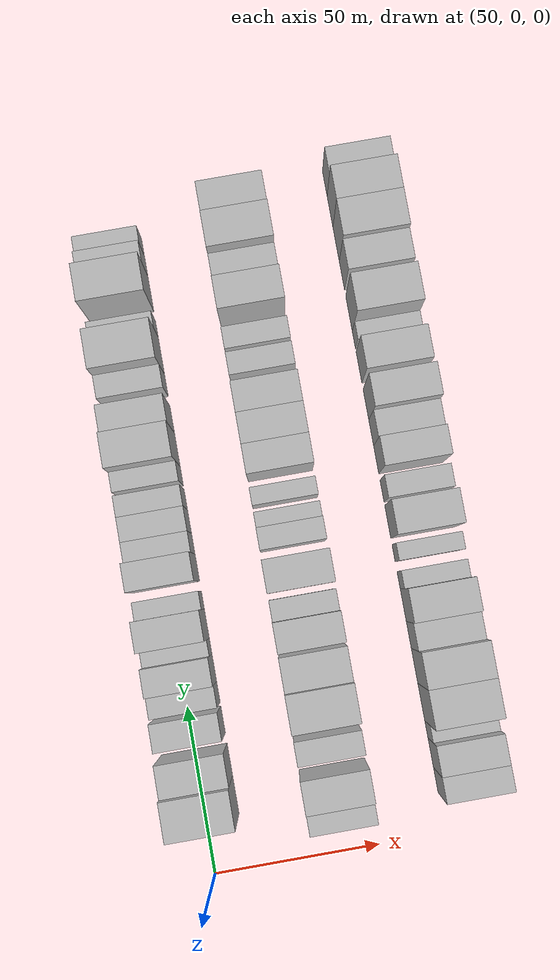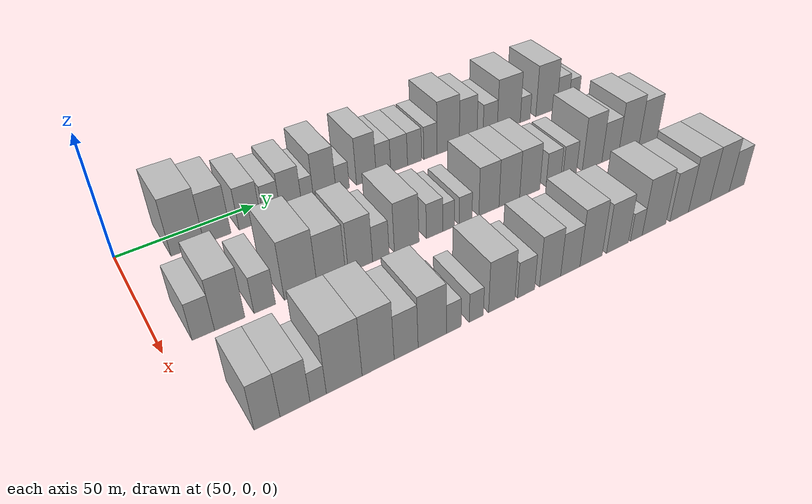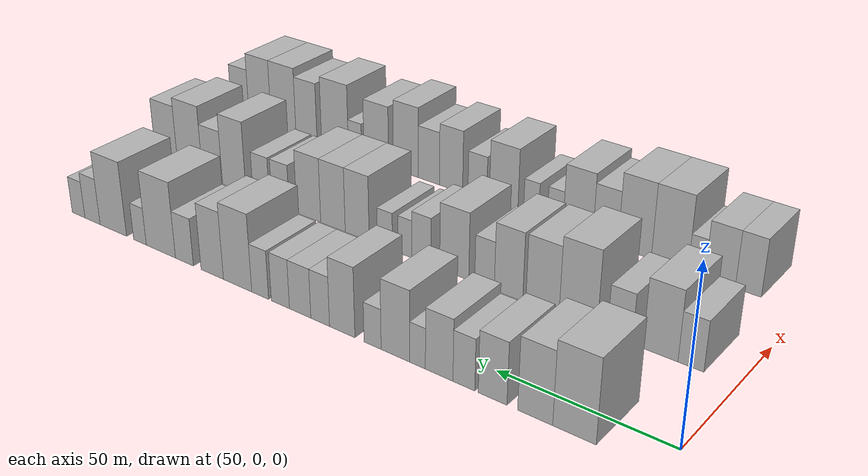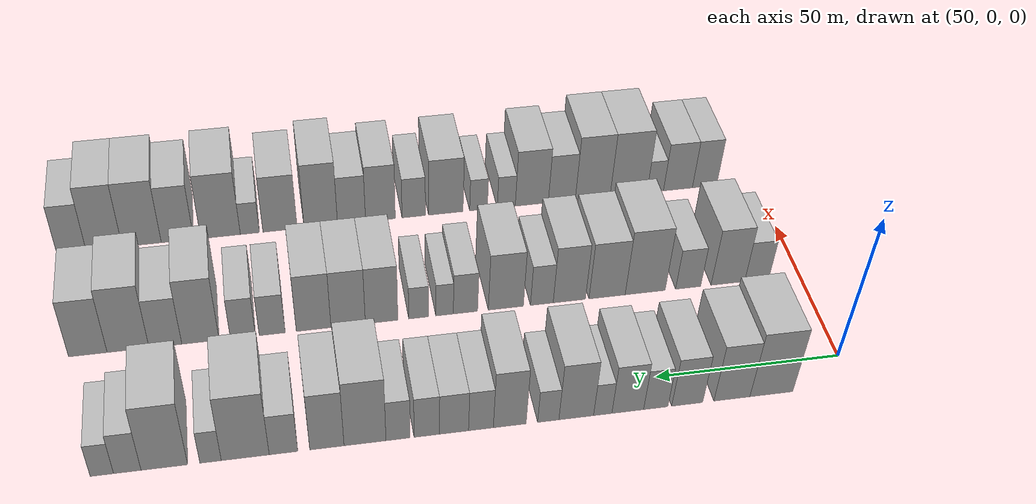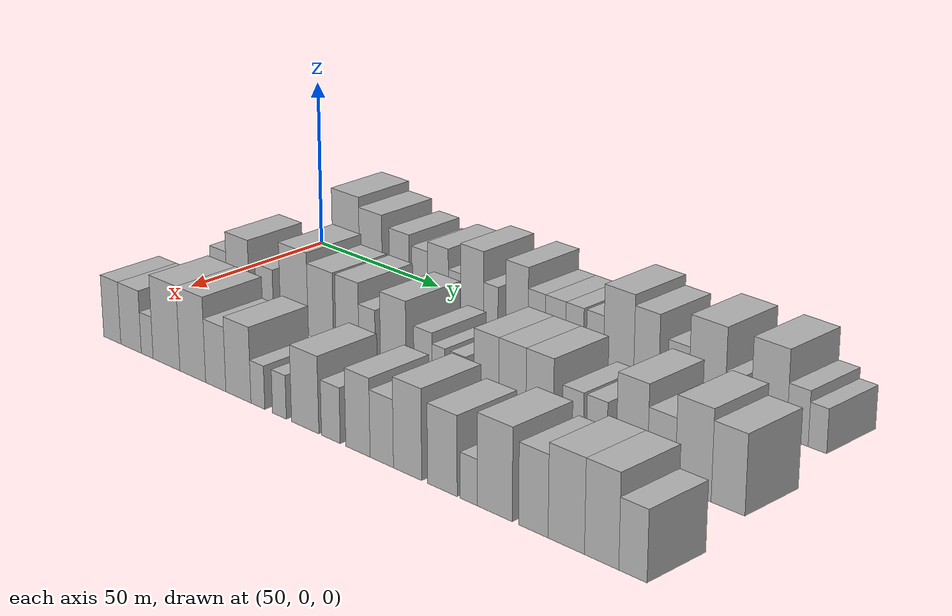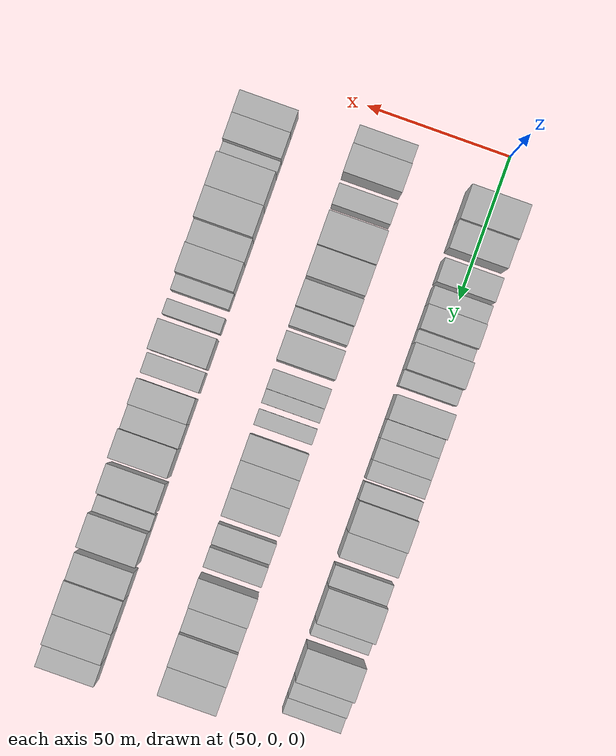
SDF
<sdf version="1.6">
 <world name="default">
  <model name="building_44">
   <static>1</static>
   <pose>50.0000 21.8897 0 0.000000 0.000000 0.000000</pose>
   <link name="link">
    <pose>0 0 12.00 0 0 0</pose>
    <collision name="collision"><geometry><box><size>20.0000 11.5788 24.0000</size></box></geometry></collision>
    <visual name="visual">
     <cast_shadows>0</cast_shadows>
     <geometry><box><size>20.0000 11.5788 24.0000</size></box></geometry>
     <material>
      <script>
       <uri>model://HANNAS_wall/materials/scripts</uri>
       <uri>model://HANNAS_wall/materials/textures</uri>
       <name>vrc/HANNAS_wall</name>
      </script>
     </material>
    </visual>
   </link>
  </model>
  <model name="building_45">
   <static>1</static>
   <pose>50.0000 32.5011 0 0.000000 0.000000 0.000000</pose>
   <link name="link">
    <pose>0 0 10.50 0 0 0</pose>
    <collision name="collision"><geometry><box><size>20.0000 9.6440 21.0000</size></box></geometry></collision>
    <visual name="visual">
     <cast_shadows>0</cast_shadows>
     <geometry><box><size>20.0000 9.6440 21.0000</size></box></geometry>
     <material>
      <script>
       <uri>model://HANNAS_wall/materials/scripts</uri>
       <uri>model://HANNAS_wall/materials/textures</uri>
       <name>vrc/HANNAS_wall</name>
      </script>
     </material>
    </visual>
   </link>
  </model>
  <model name="building_46">
   <static>1</static>
   <pose>50.0000 44.4527 0 0.000000 0.000000 0.000000</pose>
   <link name="link">
    <pose>0 0 9.00 0 0 0</pose>
    <collision name="collision"><geometry><box><size>20.0000 8.2592 18.0000</size></box></geometry></collision>
    <visual name="visual">
     <cast_shadows>0</cast_shadows>
     <geometry><box><size>20.0000 8.2592 18.0000</size></box></geometry>
     <material>
      <script>
       <uri>model://HANNAS_wall/materials/scripts</uri>
       <uri>model://HANNAS_wall/materials/textures</uri>
       <name>vrc/HANNAS_wall</name>
      </script>
     </material>
    </visual>
   </link>
  </model>
  <model name="building_47">
   <static>1</static>
   <pose>50.0000 52.7988 0 0.000000 0.000000 0.000000</pose>
   <link name="link">
    <pose>0 0 7.50 0 0 0</pose>
    <collision name="collision"><geometry><box><size>20.0000 6.4331 15.0000</size></box></geometry></collision>
    <visual name="visual">
     <cast_shadows>0</cast_shadows>
     <geometry><box><size>20.0000 6.4331 15.0000</size></box></geometry>
     <material>
      <script>
       <uri>model://HANNAS_wall/materials/scripts</uri>
       <uri>model://HANNAS_wall/materials/textures</uri>
       <name>vrc/HANNAS_wall</name>
      </script>
     </material>
    </visual>
   </link>
  </model>
  <model name="building_48">
   <static>1</static>
   <pose>50.0000 60.1944 0 0.000000 0.000000 0.000000</pose>
   <link name="link">
    <pose>0 0 9.00 0 0 0</pose>
    <collision name="collision"><geometry><box><size>20.0000 8.3580 18.0000</size></box></geometry></collision>
    <visual name="visual">
     <cast_shadows>0</cast_shadows>
     <geometry><box><size>20.0000 8.3580 18.0000</size></box></geometry>
     <material>
      <script>
       <uri>model://HANNAS_wall/materials/scripts</uri>
       <uri>model://HANNAS_wall/materials/textures</uri>
       <name>vrc/HANNAS_wall</name>
      </script>
     </material>
    </visual>
   </link>
  </model>
  <model name="building_49">
   <static>1</static>
   <pose>50.0000 66.7749 0 0.000000 0.000000 0.000000</pose>
   <link name="link">
    <pose>0 0 6.00 0 0 0</pose>
    <collision name="collision"><geometry><box><size>20.0000 4.8031 12.0000</size></box></geometry></collision>
    <visual name="visual">
     <cast_shadows>0</cast_shadows>
     <geometry><box><size>20.0000 4.8031 12.0000</size></box></geometry>
     <material>
      <script>
       <uri>model://HANNAS_wall/materials/scripts</uri>
       <uri>model://HANNAS_wall/materials/textures</uri>
       <name>vrc/HANNAS_wall</name>
      </script>
     </material>
    </visual>
   </link>
  </model>
  <model name="building_50">
   <static>1</static>
   <pose>50.0000 73.7119 0 0.000000 0.000000 0.000000</pose>
   <link name="link">
    <pose>0 0 10.50 0 0 0</pose>
    <collision name="collision"><geometry><box><size>20.0000 9.0707 21.0000</size></box></geometry></collision>
    <visual name="visual">
     <cast_shadows>0</cast_shadows>
     <geometry><box><size>20.0000 9.0707 21.0000</size></box></geometry>
     <material>
      <script>
       <uri>model://HANNAS_wall/materials/scripts</uri>
       <uri>model://HANNAS_wall/materials/textures</uri>
       <name>vrc/HANNAS_wall</name>
      </script>
     </material>
    </visual>
   </link>
  </model>
  <model name="building_51">
   <static>1</static>
   <pose>50.0000 81.0116 0 0.000000 0.000000 0.000000</pose>
   <link name="link">
    <pose>0 0 6.00 0 0 0</pose>
    <collision name="collision"><geometry><box><size>20.0000 5.5287 12.0000</size></box></geometry></collision>
    <visual name="visual">
     <cast_shadows>0</cast_shadows>
     <geometry><box><size>20.0000 5.5287 12.0000</size></box></geometry>
     <material>
      <script>
       <uri>model://HANNAS_wall/materials/scripts</uri>
       <uri>model://HANNAS_wall/materials/textures</uri>
       <name>vrc/HANNAS_wall</name>
      </script>
     </material>
    </visual>
   </link>
  </model>
  <model name="building_52">
   <static>1</static>
   <pose>50.0000 91.0099 0 0.000000 0.000000 0.000000</pose>
   <link name="link">
    <pose>0 0 10.50 0 0 0</pose>
    <collision name="collision"><geometry><box><size>20.0000 8.4680 21.0000</size></box></geometry></collision>
    <visual name="visual">
     <cast_shadows>0</cast_shadows>
     <geometry><box><size>20.0000 8.4680 21.0000</size></box></geometry>
     <material>
      <script>
       <uri>model://HANNAS_wall/materials/scripts</uri>
       <uri>model://HANNAS_wall/materials/textures</uri>
       <name>vrc/HANNAS_wall</name>
      </script>
     </material>
    </visual>
   </link>
  </model>
  <model name="building_53">
   <static>1</static>
   <pose>50.0000 98.4394 0 0.000000 0.000000 0.000000</pose>
   <link name="link">
    <pose>0 0 7.50 0 0 0</pose>
    <collision name="collision"><geometry><box><size>20.0000 6.3912 15.0000</size></box></geometry></collision>
    <visual name="visual">
     <cast_shadows>0</cast_shadows>
     <geometry><box><size>20.0000 6.3912 15.0000</size></box></geometry>
     <material>
      <script>
       <uri>model://HANNAS_wall/materials/scripts</uri>
       <uri>model://HANNAS_wall/materials/textures</uri>
       <name>vrc/HANNAS_wall</name>
      </script>
     </material>
    </visual>
   </link>
  </model>
  <model name="building_54">
   <static>1</static>
   <pose>50.0000 105.3752 0 0.000000 0.000000 0.000000</pose>
   <link name="link">
    <pose>0 0 7.50 0 0 0</pose>
    <collision name="collision"><geometry><box><size>20.0000 7.4803 15.0000</size></box></geometry></collision>
    <visual name="visual">
     <cast_shadows>0</cast_shadows>
     <geometry><box><size>20.0000 7.4803 15.0000</size></box></geometry>
     <material>
      <script>
       <uri>model://HANNAS_wall/materials/scripts</uri>
       <uri>model://HANNAS_wall/materials/textures</uri>
       <name>vrc/HANNAS_wall</name>
      </script>
     </material>
    </visual>
   </link>
  </model>
  <model name="building_55">
   <static>1</static>
   <pose>50.0000 112.3379 0 0.000000 0.000000 0.000000</pose>
   <link name="link">
    <pose>0 0 7.50 0 0 0</pose>
    <collision name="collision"><geometry><box><size>20.0000 6.4452 15.0000</size></box></geometry></collision>
    <visual name="visual">
     <cast_shadows>0</cast_shadows>
     <geometry><box><size>20.0000 6.4452 15.0000</size></box></geometry>
     <material>
      <script>
       <uri>model://HANNAS_wall/materials/scripts</uri>
       <uri>model://HANNAS_wall/materials/textures</uri>
       <name>vrc/HANNAS_wall</name>
      </script>
     </material>
    </visual>
   </link>
  </model>
  <model name="building_56">
   <static>1</static>
   <pose>50.0000 119.6325 0 0.000000 0.000000 0.000000</pose>
   <link name="link">
    <pose>0 0 7.50 0 0 0</pose>
    <collision name="collision"><geometry><box><size>20.0000 6.1440 15.0000</size></box></geometry></collision>
    <visual name="visual">
     <cast_shadows>0</cast_shadows>
     <geometry><box><size>20.0000 6.1440 15.0000</size></box></geometry>
     <material>
      <script>
       <uri>model://HANNAS_wall/materials/scripts</uri>
       <uri>model://HANNAS_wall/materials/textures</uri>
       <name>vrc/HANNAS_wall</name>
      </script>
     </material>
    </visual>
   </link>
  </model>
  <model name="building_57">
   <static>1</static>
   <pose>50.0000 128.0010 0 0.000000 0.000000 0.000000</pose>
   <link name="link">
    <pose>0 0 12.00 0 0 0</pose>
    <collision name="collision"><geometry><box><size>20.0000 10.5930 24.0000</size></box></geometry></collision>
    <visual name="visual">
     <cast_shadows>0</cast_shadows>
     <geometry><box><size>20.0000 10.5930 24.0000</size></box></geometry>
     <material>
      <script>
       <uri>model://HANNAS_wall/materials/scripts</uri>
       <uri>model://HANNAS_wall/materials/textures</uri>
       <name>vrc/HANNAS_wall</name>
      </script>
     </material>
    </visual>
   </link>
  </model>
  <model name="building_58">
   <static>1</static>
   <pose>50.0000 137.6000 0 0.000000 0.000000 0.000000</pose>
   <link name="link">
    <pose>0 0 10.50 0 0 0</pose>
    <collision name="collision"><geometry><box><size>20.0000 8.6049 21.0000</size></box></geometry></collision>
    <visual name="visual">
     <cast_shadows>0</cast_shadows>
     <geometry><box><size>20.0000 8.6049 21.0000</size></box></geometry>
     <material>
      <script>
       <uri>model://HANNAS_wall/materials/scripts</uri>
       <uri>model://HANNAS_wall/materials/textures</uri>
       <name>vrc/HANNAS_wall</name>
      </script>
     </material>
    </visual>
   </link>
  </model>
  <model name="building_59">
   <static>1</static>
   <pose>50.0000 148.4644 0 0.000000 0.000000 0.000000</pose>
   <link name="link">
    <pose>0 0 7.50 0 0 0</pose>
    <collision name="collision"><geometry><box><size>20.0000 7.1239 15.0000</size></box></geometry></collision>
    <visual name="visual">
     <cast_shadows>0</cast_shadows>
     <geometry><box><size>20.0000 7.1239 15.0000</size></box></geometry>
     <material>
      <script>
       <uri>model://HANNAS_wall/materials/scripts</uri>
       <uri>model://HANNAS_wall/materials/textures</uri>
       <name>vrc/HANNAS_wall</name>
      </script>
     </material>
    </visual>
   </link>
  </model>
  <model name="building_60">
   <static>1</static>
   <pose>50.0000 157.9762 0 0.000000 0.000000 0.000000</pose>
   <link name="link">
    <pose>0 0 12.00 0 0 0</pose>
    <collision name="collision"><geometry><box><size>20.0000 11.8997 24.0000</size></box></geometry></collision>
    <visual name="visual">
     <cast_shadows>0</cast_shadows>
     <geometry><box><size>20.0000 11.8997 24.0000</size></box></geometry>
     <material>
      <script>
       <uri>model://HANNAS_wall/materials/scripts</uri>
       <uri>model://HANNAS_wall/materials/textures</uri>
       <name>vrc/HANNAS_wall</name>
      </script>
     </material>
    </visual>
   </link>
  </model>
  <model name="building_61">
   <static>1</static>
   <pose>50.0000 166.5646 0 0.000000 0.000000 0.000000</pose>
   <link name="link">
    <pose>0 0 6.00 0 0 0</pose>
    <collision name="collision"><geometry><box><size>20.0000 5.2772 12.0000</size></box></geometry></collision>
    <visual name="visual">
     <cast_shadows>0</cast_shadows>
     <geometry><box><size>20.0000 5.2772 12.0000</size></box></geometry>
     <material>
      <script>
       <uri>model://HANNAS_wall/materials/scripts</uri>
       <uri>model://HANNAS_wall/materials/textures</uri>
       <name>vrc/HANNAS_wall</name>
      </script>
     </material>
    </visual>
   </link>
  </model>
  <model name="building_62">
   <static>1</static>
   <pose>50.0000 177.9136 0 0.000000 0.000000 0.000000</pose>
   <link name="link">
    <pose>0 0 12.00 0 0 0</pose>
    <collision name="collision"><geometry><box><size>20.0000 11.4206 24.0000</size></box></geometry></collision>
    <visual name="visual">
     <cast_shadows>0</cast_shadows>
     <geometry><box><size>20.0000 11.4206 24.0000</size></box></geometry>
     <material>
      <script>
       <uri>model://HANNAS_wall/materials/scripts</uri>
       <uri>model://HANNAS_wall/materials/textures</uri>
       <name>vrc/HANNAS_wall</name>
      </script>
     </material>
    </visual>
   </link>
  </model>
  <model name="building_63">
   <static>1</static>
   <pose>50.0000 186.9711 0 0.000000 0.000000 0.000000</pose>
   <link name="link">
    <pose>0 0 7.50 0 0 0</pose>
    <collision name="collision"><geometry><box><size>20.0000 6.6943 15.0000</size></box></geometry></collision>
    <visual name="visual">
     <cast_shadows>0</cast_shadows>
     <geometry><box><size>20.0000 6.6943 15.0000</size></box></geometry>
     <material>
      <script>
       <uri>model://HANNAS_wall/materials/scripts</uri>
       <uri>model://HANNAS_wall/materials/textures</uri>
       <name>vrc/HANNAS_wall</name>
      </script>
     </material>
    </visual>
   </link>
  </model>
  <model name="building_64">
   <static>1</static>
   <pose>50.0000 193.1554 0 0.000000 0.000000 0.000000</pose>
   <link name="link">
    <pose>0 0 6.00 0 0 0</pose>
    <collision name="collision"><geometry><box><size>20.0000 5.6743 12.0000</size></box></geometry></collision>
    <visual name="visual">
     <cast_shadows>0</cast_shadows>
     <geometry><box><size>20.0000 5.6743 12.0000</size></box></geometry>
     <material>
      <script>
       <uri>model://HANNAS_wall/materials/scripts</uri>
       <uri>model://HANNAS_wall/materials/textures</uri>
       <name>vrc/HANNAS_wall</name>
      </script>
     </material>
    </visual>
   </link>
  </model>
  <model name="building_126">
   <static>1</static>
   <pose>90.0000 12.5391 0 0.000000 0.000000 0.000000</pose>
   <link name="link">
    <pose>0 0 7.50 0 0 0</pose>
    <collision name="collision"><geometry><box><size>20.0000 7.0547 15.0000</size></box></geometry></collision>
    <visual name="visual">
     <cast_shadows>0</cast_shadows>
     <geometry><box><size>20.0000 7.0547 15.0000</size></box></geometry>
     <material>
      <script>
       <uri>model://HANNAS_wall/materials/scripts</uri>
       <uri>model://HANNAS_wall/materials/textures</uri>
       <name>vrc/HANNAS_wall</name>
      </script>
     </material>
    </visual>
   </link>
  </model>
  <model name="building_127">
   <static>1</static>
   <pose>90.0000 20.9456 0 0.000000 0.000000 0.000000</pose>
   <link name="link">
    <pose>0 0 10.50 0 0 0</pose>
    <collision name="collision"><geometry><box><size>20.0000 9.7583 21.0000</size></box></geometry></collision>
    <visual name="visual">
     <cast_shadows>0</cast_shadows>
     <geometry><box><size>20.0000 9.7583 21.0000</size></box></geometry>
     <material>
      <script>
       <uri>model://HANNAS_wall/materials/scripts</uri>
       <uri>model://HANNAS_wall/materials/textures</uri>
       <name>vrc/HANNAS_wall</name>
      </script>
     </material>
    </visual>
   </link>
  </model>
  <model name="building_128">
   <static>1</static>
   <pose>90.0000 32.4412 0 0.000000 0.000000 0.000000</pose>
   <link name="link">
    <pose>0 0 7.50 0 0 0</pose>
    <collision name="collision"><geometry><box><size>20.0000 7.2329 15.0000</size></box></geometry></collision>
    <visual name="visual">
     <cast_shadows>0</cast_shadows>
     <geometry><box><size>20.0000 7.2329 15.0000</size></box></geometry>
     <material>
      <script>
       <uri>model://HANNAS_wall/materials/scripts</uri>
       <uri>model://HANNAS_wall/materials/textures</uri>
       <name>vrc/HANNAS_wall</name>
      </script>
     </material>
    </visual>
   </link>
  </model>
  <model name="building_129">
   <static>1</static>
   <pose>90.0000 44.7947 0 0.000000 0.000000 0.000000</pose>
   <link name="link">
    <pose>0 0 12.00 0 0 0</pose>
    <collision name="collision"><geometry><box><size>20.0000 11.4742 24.0000</size></box></geometry></collision>
    <visual name="visual">
     <cast_shadows>0</cast_shadows>
     <geometry><box><size>20.0000 11.4742 24.0000</size></box></geometry>
     <material>
      <script>
       <uri>model://HANNAS_wall/materials/scripts</uri>
       <uri>model://HANNAS_wall/materials/textures</uri>
       <name>vrc/HANNAS_wall</name>
      </script>
     </material>
    </visual>
   </link>
  </model>
  <model name="building_130">
   <static>1</static>
   <pose>90.0000 55.6900 0 0.000000 0.000000 0.000000</pose>
   <link name="link">
    <pose>0 0 10.50 0 0 0</pose>
    <collision name="collision"><geometry><box><size>20.0000 10.3165 21.0000</size></box></geometry></collision>
    <visual name="visual">
     <cast_shadows>0</cast_shadows>
     <geometry><box><size>20.0000 10.3165 21.0000</size></box></geometry>
     <material>
      <script>
       <uri>model://HANNAS_wall/materials/scripts</uri>
       <uri>model://HANNAS_wall/materials/textures</uri>
       <name>vrc/HANNAS_wall</name>
      </script>
     </material>
    </visual>
   </link>
  </model>
  <model name="building_131">
   <static>1</static>
   <pose>90.0000 66.4142 0 0.000000 0.000000 0.000000</pose>
   <link name="link">
    <pose>0 0 10.50 0 0 0</pose>
    <collision name="collision"><geometry><box><size>20.0000 9.1318 21.0000</size></box></geometry></collision>
    <visual name="visual">
     <cast_shadows>0</cast_shadows>
     <geometry><box><size>20.0000 9.1318 21.0000</size></box></geometry>
     <material>
      <script>
       <uri>model://HANNAS_wall/materials/scripts</uri>
       <uri>model://HANNAS_wall/materials/textures</uri>
       <name>vrc/HANNAS_wall</name>
      </script>
     </material>
    </visual>
   </link>
  </model>
  <model name="building_132">
   <static>1</static>
   <pose>90.0000 74.1869 0 0.000000 0.000000 0.000000</pose>
   <link name="link">
    <pose>0 0 7.50 0 0 0</pose>
    <collision name="collision"><geometry><box><size>20.0000 6.4135 15.0000</size></box></geometry></collision>
    <visual name="visual">
     <cast_shadows>0</cast_shadows>
     <geometry><box><size>20.0000 6.4135 15.0000</size></box></geometry>
     <material>
      <script>
       <uri>model://HANNAS_wall/materials/scripts</uri>
       <uri>model://HANNAS_wall/materials/textures</uri>
       <name>vrc/HANNAS_wall</name>
      </script>
     </material>
    </visual>
   </link>
  </model>
  <model name="building_133">
   <static>1</static>
   <pose>90.0000 84.3078 0 0.000000 0.000000 0.000000</pose>
   <link name="link">
    <pose>0 0 10.50 0 0 0</pose>
    <collision name="collision"><geometry><box><size>20.0000 9.8284 21.0000</size></box></geometry></collision>
    <visual name="visual">
     <cast_shadows>0</cast_shadows>
     <geometry><box><size>20.0000 9.8284 21.0000</size></box></geometry>
     <material>
      <script>
       <uri>model://HANNAS_wall/materials/scripts</uri>
       <uri>model://HANNAS_wall/materials/textures</uri>
       <name>vrc/HANNAS_wall</name>
      </script>
     </material>
    </visual>
   </link>
  </model>
  <model name="building_134">
   <static>1</static>
   <pose>90.0000 95.6034 0 0.000000 0.000000 0.000000</pose>
   <link name="link">
    <pose>0 0 7.50 0 0 0</pose>
    <collision name="collision"><geometry><box><size>20.0000 6.7628 15.0000</size></box></geometry></collision>
    <visual name="visual">
     <cast_shadows>0</cast_shadows>
     <geometry><box><size>20.0000 6.7628 15.0000</size></box></geometry>
     <material>
      <script>
       <uri>model://HANNAS_wall/materials/scripts</uri>
       <uri>model://HANNAS_wall/materials/textures</uri>
       <name>vrc/HANNAS_wall</name>
      </script>
     </material>
    </visual>
   </link>
  </model>
  <model name="building_135">
   <static>1</static>
   <pose>90.0000 101.4055 0 0.000000 0.000000 0.000000</pose>
   <link name="link">
    <pose>0 0 6.00 0 0 0</pose>
    <collision name="collision"><geometry><box><size>20.0000 4.8414 12.0000</size></box></geometry></collision>
    <visual name="visual">
     <cast_shadows>0</cast_shadows>
     <geometry><box><size>20.0000 4.8414 12.0000</size></box></geometry>
     <material>
      <script>
       <uri>model://HANNAS_wall/materials/scripts</uri>
       <uri>model://HANNAS_wall/materials/textures</uri>
       <name>vrc/HANNAS_wall</name>
      </script>
     </material>
    </visual>
   </link>
  </model>
  <model name="building_136">
   <static>1</static>
   <pose>90.0000 108.5738 0 0.000000 0.000000 0.000000</pose>
   <link name="link">
    <pose>0 0 6.00 0 0 0</pose>
    <collision name="collision"><geometry><box><size>20.0000 5.4952 12.0000</size></box></geometry></collision>
    <visual name="visual">
     <cast_shadows>0</cast_shadows>
     <geometry><box><size>20.0000 5.4952 12.0000</size></box></geometry>
     <material>
      <script>
       <uri>model://HANNAS_wall/materials/scripts</uri>
       <uri>model://HANNAS_wall/materials/textures</uri>
       <name>vrc/HANNAS_wall</name>
      </script>
     </material>
    </visual>
   </link>
  </model>
  <model name="building_137">
   <static>1</static>
   <pose>90.0000 118.7861 0 0.000000 0.000000 0.000000</pose>
   <link name="link">
    <pose>0 0 10.50 0 0 0</pose>
    <collision name="collision"><geometry><box><size>20.0000 8.9294 21.0000</size></box></geometry></collision>
    <visual name="visual">
     <cast_shadows>0</cast_shadows>
     <geometry><box><size>20.0000 8.9294 21.0000</size></box></geometry>
     <material>
      <script>
       <uri>model://HANNAS_wall/materials/scripts</uri>
       <uri>model://HANNAS_wall/materials/textures</uri>
       <name>vrc/HANNAS_wall</name>
      </script>
     </material>
    </visual>
   </link>
  </model>
  <model name="building_138">
   <static>1</static>
   <pose>90.0000 127.9511 0 0.000000 0.000000 0.000000</pose>
   <link name="link">
    <pose>0 0 10.50 0 0 0</pose>
    <collision name="collision"><geometry><box><size>20.0000 9.4006 21.0000</size></box></geometry></collision>
    <visual name="visual">
     <cast_shadows>0</cast_shadows>
     <geometry><box><size>20.0000 9.4006 21.0000</size></box></geometry>
     <material>
      <script>
       <uri>model://HANNAS_wall/materials/scripts</uri>
       <uri>model://HANNAS_wall/materials/textures</uri>
       <name>vrc/HANNAS_wall</name>
      </script>
     </material>
    </visual>
   </link>
  </model>
  <model name="building_139">
   <static>1</static>
   <pose>90.0000 137.3617 0 0.000000 0.000000 0.000000</pose>
   <link name="link">
    <pose>0 0 10.50 0 0 0</pose>
    <collision name="collision"><geometry><box><size>20.0000 9.4206 21.0000</size></box></geometry></collision>
    <visual name="visual">
     <cast_shadows>0</cast_shadows>
     <geometry><box><size>20.0000 9.4206 21.0000</size></box></geometry>
     <material>
      <script>
       <uri>model://HANNAS_wall/materials/scripts</uri>
       <uri>model://HANNAS_wall/materials/textures</uri>
       <name>vrc/HANNAS_wall</name>
      </script>
     </material>
    </visual>
   </link>
  </model>
  <model name="building_140">
   <static>1</static>
   <pose>90.0000 148.5877 0 0.000000 0.000000 0.000000</pose>
   <link name="link">
    <pose>0 0 7.50 0 0 0</pose>
    <collision name="collision"><geometry><box><size>20.0000 7.0313 15.0000</size></box></geometry></collision>
    <visual name="visual">
     <cast_shadows>0</cast_shadows>
     <geometry><box><size>20.0000 7.0313 15.0000</size></box></geometry>
     <material>
      <script>
       <uri>model://HANNAS_wall/materials/scripts</uri>
       <uri>model://HANNAS_wall/materials/textures</uri>
       <name>vrc/HANNAS_wall</name>
      </script>
     </material>
    </visual>
   </link>
  </model>
  <model name="building_141">
   <static>1</static>
   <pose>90.0000 156.4864 0 0.000000 0.000000 0.000000</pose>
   <link name="link">
    <pose>0 0 7.50 0 0 0</pose>
    <collision name="collision"><geometry><box><size>20.0000 6.7660 15.0000</size></box></geometry></collision>
    <visual name="visual">
     <cast_shadows>0</cast_shadows>
     <geometry><box><size>20.0000 6.7660 15.0000</size></box></geometry>
     <material>
      <script>
       <uri>model://HANNAS_wall/materials/scripts</uri>
       <uri>model://HANNAS_wall/materials/textures</uri>
       <name>vrc/HANNAS_wall</name>
      </script>
     </material>
    </visual>
   </link>
  </model>
  <model name="building_142">
   <static>1</static>
   <pose>90.0000 167.8605 0 0.000000 0.000000 0.000000</pose>
   <link name="link">
    <pose>0 0 12.00 0 0 0</pose>
    <collision name="collision"><geometry><box><size>20.0000 9.9822 24.0000</size></box></geometry></collision>
    <visual name="visual">
     <cast_shadows>0</cast_shadows>
     <geometry><box><size>20.0000 9.9822 24.0000</size></box></geometry>
     <material>
      <script>
       <uri>model://HANNAS_wall/materials/scripts</uri>
       <uri>model://HANNAS_wall/materials/textures</uri>
       <name>vrc/HANNAS_wall</name>
      </script>
     </material>
    </visual>
   </link>
  </model>
  <model name="building_143">
   <static>1</static>
   <pose>90.0000 177.2043 0 0.000000 0.000000 0.000000</pose>
   <link name="link">
    <pose>0 0 9.00 0 0 0</pose>
    <collision name="collision"><geometry><box><size>20.0000 8.7055 18.0000</size></box></geometry></collision>
    <visual name="visual">
     <cast_shadows>0</cast_shadows>
     <geometry><box><size>20.0000 8.7055 18.0000</size></box></geometry>
     <material>
      <script>
       <uri>model://HANNAS_wall/materials/scripts</uri>
       <uri>model://HANNAS_wall/materials/textures</uri>
       <name>vrc/HANNAS_wall</name>
      </script>
     </material>
    </visual>
   </link>
  </model>
  <model name="building_144">
   <static>1</static>
   <pose>90.0000 187.0935 0 0.000000 0.000000 0.000000</pose>
   <link name="link">
    <pose>0 0 12.00 0 0 0</pose>
    <collision name="collision"><geometry><box><size>20.0000 11.0729 24.0000</size></box></geometry></collision>
    <visual name="visual">
     <cast_shadows>0</cast_shadows>
     <geometry><box><size>20.0000 11.0729 24.0000</size></box></geometry>
     <material>
      <script>
       <uri>model://HANNAS_wall/materials/scripts</uri>
       <uri>model://HANNAS_wall/materials/textures</uri>
       <name>vrc/HANNAS_wall</name>
      </script>
     </material>
    </visual>
   </link>
  </model>
  <model name="building_145">
   <static>1</static>
   <pose>90.0000 197.6979 0 0.000000 0.000000 0.000000</pose>
   <link name="link">
    <pose>0 0 10.50 0 0 0</pose>
    <collision name="collision"><geometry><box><size>20.0000 10.1359 21.0000</size></box></geometry></collision>
    <visual name="visual">
     <cast_shadows>0</cast_shadows>
     <geometry><box><size>20.0000 10.1359 21.0000</size></box></geometry>
     <material>
      <script>
       <uri>model://HANNAS_wall/materials/scripts</uri>
       <uri>model://HANNAS_wall/materials/textures</uri>
       <name>vrc/HANNAS_wall</name>
      </script>
     </material>
    </visual>
   </link>
  </model>
  <model name="building_210">
   <static>1</static>
   <pose>130.0000 15.5842 0 0.000000 0.000000 0.000000</pose>
   <link name="link">
    <pose>0 0 9.00 0 0 0</pose>
    <collision name="collision"><geometry><box><size>20.0000 7.5700 18.0000</size></box></geometry></collision>
    <visual name="visual">
     <cast_shadows>0</cast_shadows>
     <geometry><box><size>20.0000 7.5700 18.0000</size></box></geometry>
     <material>
      <script>
       <uri>model://HANNAS_wall/materials/scripts</uri>
       <uri>model://HANNAS_wall/materials/textures</uri>
       <name>vrc/HANNAS_wall</name>
      </script>
     </material>
    </visual>
   </link>
  </model>
  <model name="building_211">
   <static>1</static>
   <pose>130.0000 23.8609 0 0.000000 0.000000 0.000000</pose>
   <link name="link">
    <pose>0 0 9.00 0 0 0</pose>
    <collision name="collision"><geometry><box><size>20.0000 8.9835 18.0000</size></box></geometry></collision>
    <visual name="visual">
     <cast_shadows>0</cast_shadows>
     <geometry><box><size>20.0000 8.9835 18.0000</size></box></geometry>
     <material>
      <script>
       <uri>model://HANNAS_wall/materials/scripts</uri>
       <uri>model://HANNAS_wall/materials/textures</uri>
       <name>vrc/HANNAS_wall</name>
      </script>
     </material>
    </visual>
   </link>
  </model>
  <model name="building_212">
   <static>1</static>
   <pose>130.0000 30.8974 0 0.000000 0.000000 0.000000</pose>
   <link name="link">
    <pose>0 0 6.00 0 0 0</pose>
    <collision name="collision"><geometry><box><size>20.0000 5.0893 12.0000</size></box></geometry></collision>
    <visual name="visual">
     <cast_shadows>0</cast_shadows>
     <geometry><box><size>20.0000 5.0893 12.0000</size></box></geometry>
     <material>
      <script>
       <uri>model://HANNAS_wall/materials/scripts</uri>
       <uri>model://HANNAS_wall/materials/textures</uri>
       <name>vrc/HANNAS_wall</name>
      </script>
     </material>
    </visual>
   </link>
  </model>
  <model name="building_213">
   <static>1</static>
   <pose>130.0000 39.1445 0 0.000000 0.000000 0.000000</pose>
   <link name="link">
    <pose>0 0 12.00 0 0 0</pose>
    <collision name="collision"><geometry><box><size>20.0000 11.4051 24.0000</size></box></geometry></collision>
    <visual name="visual">
     <cast_shadows>0</cast_shadows>
     <geometry><box><size>20.0000 11.4051 24.0000</size></box></geometry>
     <material>
      <script>
       <uri>model://HANNAS_wall/materials/scripts</uri>
       <uri>model://HANNAS_wall/materials/textures</uri>
       <name>vrc/HANNAS_wall</name>
      </script>
     </material>
    </visual>
   </link>
  </model>
  <model name="building_214">
   <static>1</static>
   <pose>130.0000 50.1748 0 0.000000 0.000000 0.000000</pose>
   <link name="link">
    <pose>0 0 12.00 0 0 0</pose>
    <collision name="collision"><geometry><box><size>20.0000 10.6555 24.0000</size></box></geometry></collision>
    <visual name="visual">
     <cast_shadows>0</cast_shadows>
     <geometry><box><size>20.0000 10.6555 24.0000</size></box></geometry>
     <material>
      <script>
       <uri>model://HANNAS_wall/materials/scripts</uri>
       <uri>model://HANNAS_wall/materials/textures</uri>
       <name>vrc/HANNAS_wall</name>
      </script>
     </material>
    </visual>
   </link>
  </model>
  <model name="building_215">
   <static>1</static>
   <pose>130.0000 59.6212 0 0.000000 0.000000 0.000000</pose>
   <link name="link">
    <pose>0 0 9.00 0 0 0</pose>
    <collision name="collision"><geometry><box><size>20.0000 8.2372 18.0000</size></box></geometry></collision>
    <visual name="visual">
     <cast_shadows>0</cast_shadows>
     <geometry><box><size>20.0000 8.2372 18.0000</size></box></geometry>
     <material>
      <script>
       <uri>model://HANNAS_wall/materials/scripts</uri>
       <uri>model://HANNAS_wall/materials/textures</uri>
       <name>vrc/HANNAS_wall</name>
      </script>
     </material>
    </visual>
   </link>
  </model>
  <model name="building_216">
   <static>1</static>
   <pose>130.0000 68.7503 0 0.000000 0.000000 0.000000</pose>
   <link name="link">
    <pose>0 0 10.50 0 0 0</pose>
    <collision name="collision"><geometry><box><size>20.0000 10.0210 21.0000</size></box></geometry></collision>
    <visual name="visual">
     <cast_shadows>0</cast_shadows>
     <geometry><box><size>20.0000 10.0210 21.0000</size></box></geometry>
     <material>
      <script>
       <uri>model://HANNAS_wall/materials/scripts</uri>
       <uri>model://HANNAS_wall/materials/textures</uri>
       <name>vrc/HANNAS_wall</name>
      </script>
     </material>
    </visual>
   </link>
  </model>
  <model name="building_217">
   <static>1</static>
   <pose>130.0000 76.4768 0 0.000000 0.000000 0.000000</pose>
   <link name="link">
    <pose>0 0 6.00 0 0 0</pose>
    <collision name="collision"><geometry><box><size>20.0000 5.4321 12.0000</size></box></geometry></collision>
    <visual name="visual">
     <cast_shadows>0</cast_shadows>
     <geometry><box><size>20.0000 5.4321 12.0000</size></box></geometry>
     <material>
      <script>
       <uri>model://HANNAS_wall/materials/scripts</uri>
       <uri>model://HANNAS_wall/materials/textures</uri>
       <name>vrc/HANNAS_wall</name>
      </script>
     </material>
    </visual>
   </link>
  </model>
  <model name="building_218">
   <static>1</static>
   <pose>130.0000 84.8513 0 0.000000 0.000000 0.000000</pose>
   <link name="link">
    <pose>0 0 6.00 0 0 0</pose>
    <collision name="collision"><geometry><box><size>20.0000 5.3168 12.0000</size></box></geometry></collision>
    <visual name="visual">
     <cast_shadows>0</cast_shadows>
     <geometry><box><size>20.0000 5.3168 12.0000</size></box></geometry>
     <material>
      <script>
       <uri>model://HANNAS_wall/materials/scripts</uri>
       <uri>model://HANNAS_wall/materials/textures</uri>
       <name>vrc/HANNAS_wall</name>
      </script>
     </material>
    </visual>
   </link>
  </model>
  <model name="building_219">
   <static>1</static>
   <pose>130.0000 94.6550 0 0.000000 0.000000 0.000000</pose>
   <link name="link">
    <pose>0 0 10.50 0 0 0</pose>
    <collision name="collision"><geometry><box><size>20.0000 10.2906 21.0000</size></box></geometry></collision>
    <visual name="visual">
     <cast_shadows>0</cast_shadows>
     <geometry><box><size>20.0000 10.2906 21.0000</size></box></geometry>
     <material>
      <script>
       <uri>model://HANNAS_wall/materials/scripts</uri>
       <uri>model://HANNAS_wall/materials/textures</uri>
       <name>vrc/HANNAS_wall</name>
      </script>
     </material>
    </visual>
   </link>
  </model>
  <model name="building_220">
   <static>1</static>
   <pose>130.0000 104.2630 0 0.000000 0.000000 0.000000</pose>
   <link name="link">
    <pose>0 0 7.50 0 0 0</pose>
    <collision name="collision"><geometry><box><size>20.0000 6.9253 15.0000</size></box></geometry></collision>
    <visual name="visual">
     <cast_shadows>0</cast_shadows>
     <geometry><box><size>20.0000 6.9253 15.0000</size></box></geometry>
     <material>
      <script>
       <uri>model://HANNAS_wall/materials/scripts</uri>
       <uri>model://HANNAS_wall/materials/textures</uri>
       <name>vrc/HANNAS_wall</name>
      </script>
     </material>
    </visual>
   </link>
  </model>
  <model name="building_221">
   <static>1</static>
   <pose>130.0000 114.1256 0 0.000000 0.000000 0.000000</pose>
   <link name="link">
    <pose>0 0 10.50 0 0 0</pose>
    <collision name="collision"><geometry><box><size>20.0000 8.7999 21.0000</size></box></geometry></collision>
    <visual name="visual">
     <cast_shadows>0</cast_shadows>
     <geometry><box><size>20.0000 8.7999 21.0000</size></box></geometry>
     <material>
      <script>
       <uri>model://HANNAS_wall/materials/scripts</uri>
       <uri>model://HANNAS_wall/materials/textures</uri>
       <name>vrc/HANNAS_wall</name>
      </script>
     </material>
    </visual>
   </link>
  </model>
  <model name="building_222">
   <static>1</static>
   <pose>130.0000 122.6610 0 0.000000 0.000000 0.000000</pose>
   <link name="link">
    <pose>0 0 9.00 0 0 0</pose>
    <collision name="collision"><geometry><box><size>20.0000 8.2710 18.0000</size></box></geometry></collision>
    <visual name="visual">
     <cast_shadows>0</cast_shadows>
     <geometry><box><size>20.0000 8.2710 18.0000</size></box></geometry>
     <material>
      <script>
       <uri>model://HANNAS_wall/materials/scripts</uri>
       <uri>model://HANNAS_wall/materials/textures</uri>
       <name>vrc/HANNAS_wall</name>
      </script>
     </material>
    </visual>
   </link>
  </model>
  <model name="building_223">
   <static>1</static>
   <pose>130.0000 131.7025 0 0.000000 0.000000 0.000000</pose>
   <link name="link">
    <pose>0 0 12.00 0 0 0</pose>
    <collision name="collision"><geometry><box><size>20.0000 9.8120 24.0000</size></box></geometry></collision>
    <visual name="visual">
     <cast_shadows>0</cast_shadows>
     <geometry><box><size>20.0000 9.8120 24.0000</size></box></geometry>
     <material>
      <script>
       <uri>model://HANNAS_wall/materials/scripts</uri>
       <uri>model://HANNAS_wall/materials/textures</uri>
       <name>vrc/HANNAS_wall</name>
      </script>
     </material>
    </visual>
   </link>
  </model>
  <model name="building_224">
   <static>1</static>
   <pose>130.0000 143.6136 0 0.000000 0.000000 0.000000</pose>
   <link name="link">
    <pose>0 0 10.50 0 0 0</pose>
    <collision name="collision"><geometry><box><size>20.0000 10.0101 21.0000</size></box></geometry></collision>
    <visual name="visual">
     <cast_shadows>0</cast_shadows>
     <geometry><box><size>20.0000 10.0101 21.0000</size></box></geometry>
     <material>
      <script>
       <uri>model://HANNAS_wall/materials/scripts</uri>
       <uri>model://HANNAS_wall/materials/textures</uri>
       <name>vrc/HANNAS_wall</name>
      </script>
     </material>
    </visual>
   </link>
  </model>
  <model name="building_225">
   <static>1</static>
   <pose>130.0000 152.3978 0 0.000000 0.000000 0.000000</pose>
   <link name="link">
    <pose>0 0 6.00 0 0 0</pose>
    <collision name="collision"><geometry><box><size>20.0000 5.5584 12.0000</size></box></geometry></collision>
    <visual name="visual">
     <cast_shadows>0</cast_shadows>
     <geometry><box><size>20.0000 5.5584 12.0000</size></box></geometry>
     <material>
      <script>
       <uri>model://HANNAS_wall/materials/scripts</uri>
       <uri>model://HANNAS_wall/materials/textures</uri>
       <name>vrc/HANNAS_wall</name>
      </script>
     </material>
    </visual>
   </link>
  </model>
  <model name="building_226">
   <static>1</static>
   <pose>130.0000 160.9051 0 0.000000 0.000000 0.000000</pose>
   <link name="link">
    <pose>0 0 12.00 0 0 0</pose>
    <collision name="collision"><geometry><box><size>20.0000 11.4561 24.0000</size></box></geometry></collision>
    <visual name="visual">
     <cast_shadows>0</cast_shadows>
     <geometry><box><size>20.0000 11.4561 24.0000</size></box></geometry>
     <material>
      <script>
       <uri>model://HANNAS_wall/materials/scripts</uri>
       <uri>model://HANNAS_wall/materials/textures</uri>
       <name>vrc/HANNAS_wall</name>
      </script>
     </material>
    </visual>
   </link>
  </model>
  <model name="building_227">
   <static>1</static>
   <pose>130.0000 173.2812 0 0.000000 0.000000 0.000000</pose>
   <link name="link">
    <pose>0 0 10.50 0 0 0</pose>
    <collision name="collision"><geometry><box><size>20.0000 9.2960 21.0000</size></box></geometry></collision>
    <visual name="visual">
     <cast_shadows>0</cast_shadows>
     <geometry><box><size>20.0000 9.2960 21.0000</size></box></geometry>
     <material>
      <script>
       <uri>model://HANNAS_wall/materials/scripts</uri>
       <uri>model://HANNAS_wall/materials/textures</uri>
       <name>vrc/HANNAS_wall</name>
      </script>
     </material>
    </visual>
   </link>
  </model>
  <model name="building_228">
   <static>1</static>
   <pose>130.0000 183.5183 0 0.000000 0.000000 0.000000</pose>
   <link name="link">
    <pose>0 0 12.00 0 0 0</pose>
    <collision name="collision"><geometry><box><size>20.0000 11.1782 24.0000</size></box></geometry></collision>
    <visual name="visual">
     <cast_shadows>0</cast_shadows>
     <geometry><box><size>20.0000 11.1782 24.0000</size></box></geometry>
     <material>
      <script>
       <uri>model://HANNAS_wall/materials/scripts</uri>
       <uri>model://HANNAS_wall/materials/textures</uri>
       <name>vrc/HANNAS_wall</name>
      </script>
     </material>
    </visual>
   </link>
  </model>
  <model name="building_229">
   <static>1</static>
   <pose>130.0000 194.2418 0 0.000000 0.000000 0.000000</pose>
   <link name="link">
    <pose>0 0 12.00 0 0 0</pose>
    <collision name="collision"><geometry><box><size>20.0000 10.2689 24.0000</size></box></geometry></collision>
    <visual name="visual">
     <cast_shadows>0</cast_shadows>
     <geometry><box><size>20.0000 10.2689 24.0000</size></box></geometry>
     <material>
      <script>
       <uri>model://HANNAS_wall/materials/scripts</uri>
       <uri>model://HANNAS_wall/materials/textures</uri>
       <name>vrc/HANNAS_wall</name>
      </script>
     </material>
    </visual>
   </link>
  </model>
  <model name="building_230">
   <static>1</static>
   <pose>130.0000 203.5151 0 0.000000 0.000000 0.000000</pose>
   <link name="link">
    <pose>0 0 9.00 0 0 0</pose>
    <collision name="collision"><geometry><box><size>20.0000 8.2777 18.0000</size></box></geometry></collision>
    <visual name="visual">
     <cast_shadows>0</cast_shadows>
     <geometry><box><size>20.0000 8.2777 18.0000</size></box></geometry>
     <material>
      <script>
       <uri>model://HANNAS_wall/materials/scripts</uri>
       <uri>model://HANNAS_wall/materials/textures</uri>
       <name>vrc/HANNAS_wall</name>
      </script>
     </material>
    </visual>
   </link>
  </model>
 </world>
</sdf>
